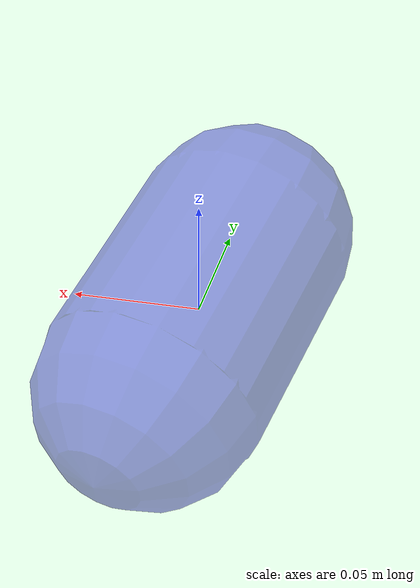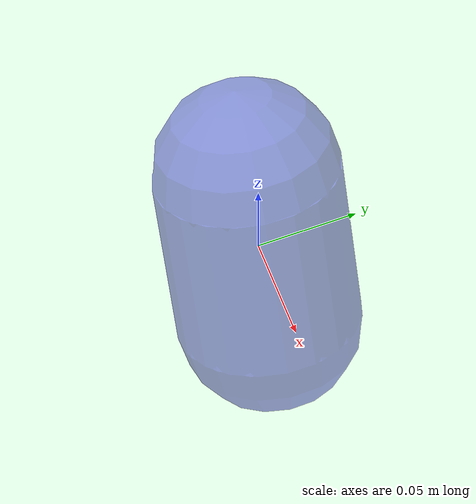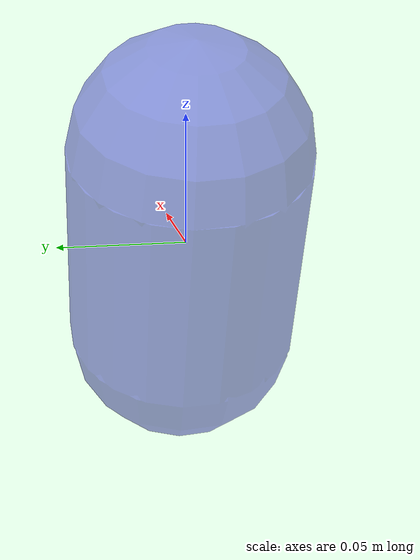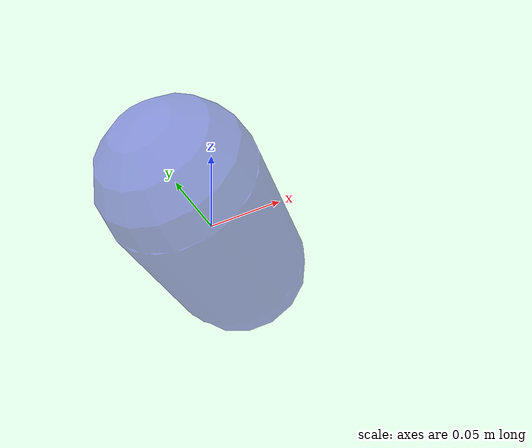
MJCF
<mujoco model="cereal-visual">
  <asset>
    <mesh file="meshes/cereal.stl" name="cereal_mesh"/>
  </asset>
  <worldbody>
    <body>
      <body name="object">
        <geom pos="0.000033 -0.000004 -0.000042" type="capsule" rgba="0.2 0.2 0.8 0.5" conaffinity="0" contype="0" group="1" mass="0.0001" quat="0.222060 0.068152 0.972648 0.000000" size="0.045702 0.043867"/>
      </body>
      <site rgba="0 0 0 0" size="0.005" pos="0 0 -0.10" name="bottom_site"/>
      <site rgba="0 0 0 0" size="0.005" pos="0 0 0.03" name="top_site"/>
      <site rgba="0 0 0 0" size="0.005" pos="0.04 0.03 0" name="horizontal_radius_site"/>
    </body>
  </worldbody>
</mujoco>
